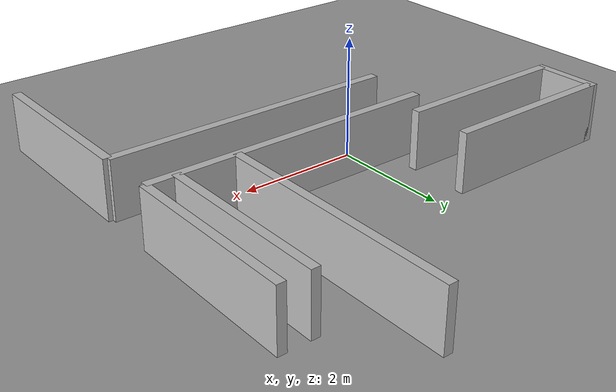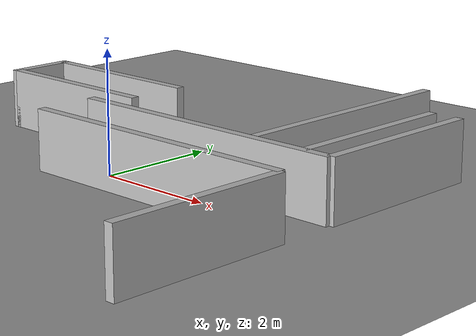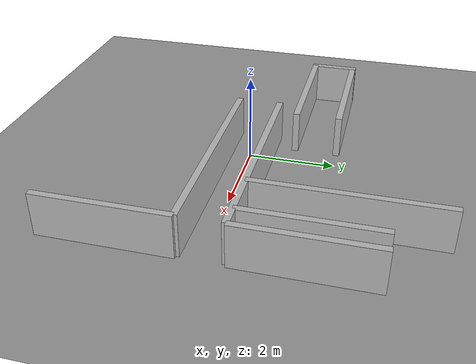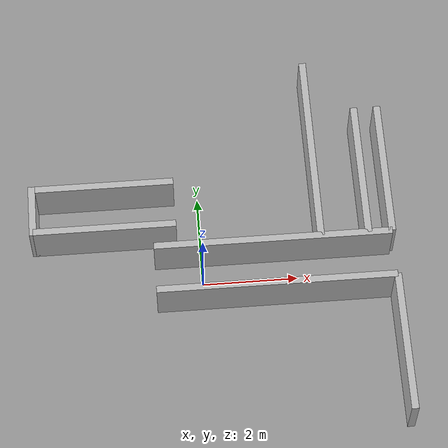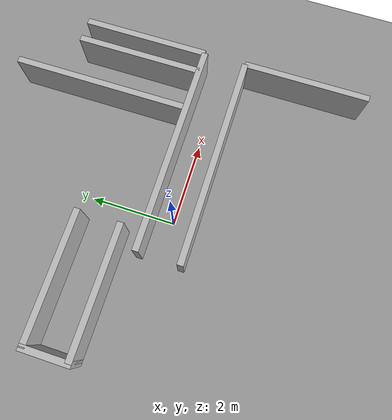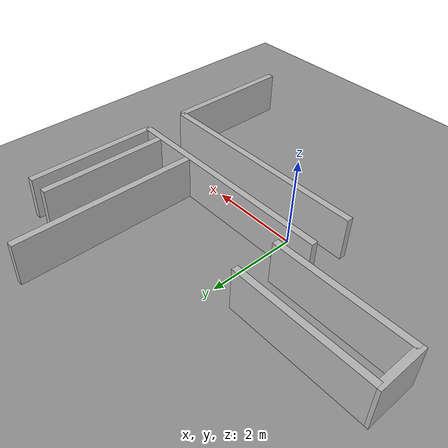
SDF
<?xml version="1.0"?>
<sdf version="1.9">
  <world name="navigation_narrow">
    <physics name="1ms" type="ignored">
      <max_step_size>0.001</max_step_size>
      <real_time_factor>1.0</real_time_factor>
    </physics>
    <plugin filename="gz-sim-physics-system" name="gz::sim::systems::Physics"/>
    <plugin filename="gz-sim-user-commands-system" name="gz::sim::systems::UserCommands"/>
    <plugin filename="gz-sim-scene-broadcaster-system" name="gz::sim::systems::SceneBroadcaster"/>
    <plugin filename="gz-sim-sensors-system" name="gz::sim::systems::Sensors">
      <render_engine>ogre2</render_engine>
    </plugin>
    <plugin filename="gz-sim-imu-system" name="gz::sim::systems::Imu"/>
    <light type="directional" name="sun">
      <pose>0 0 10 0 0 0</pose><cast_shadows>true</cast_shadows>
      <diffuse>0.85 0.85 0.85 1</diffuse><specular>0.2 0.2 0.2 1</specular>
      <direction>-0.5 0.1 -0.9</direction>
    </light>
    <model name="ground_plane">
      <static>true</static>
      <link name="link">
        <collision name="collision"><geometry><plane><normal>0 0 1</normal><size>20 20</size></plane></geometry></collision>
        <visual name="visual">
          <geometry><plane><normal>0 0 1</normal><size>20 20</size></plane></geometry>
          <material><ambient>0.58 0.58 0.58 1</ambient><diffuse>0.58 0.58 0.58 1</diffuse></material>
        </visual>
      </link>
    </model>

    <!-- 1.0 m clear corridor, wider than the complete ~0.17 m wheel envelope. -->
    <model name="corridor_north">
      <static>true</static><pose>1.5 0.5 0.5 0 0 0</pose>
      <link name="link"><collision name="collision"><geometry><box><size>5.0 0.15 1.0</size></box></geometry></collision>
        <visual name="visual"><geometry><box><size>5.0 0.15 1.0</size></box></geometry></visual></link>
    </model>
    <model name="corridor_south">
      <static>true</static><pose>1.5 -0.5 0.5 0 0 0</pose>
      <link name="link"><collision name="collision"><geometry><box><size>5.0 0.15 1.0</size></box></geometry></collision>
        <visual name="visual"><geometry><box><size>5.0 0.15 1.0</size></box></geometry></visual></link>
    </model>

    <!-- Doorway at x=4: two wall segments leave a 1.0 m opening. -->
    <model name="doorway_lower">
      <static>true</static><pose>4 -2.0 0.5 0 0 0</pose>
      <link name="link"><collision name="collision"><geometry><box><size>0.15 3.0 1.0</size></box></geometry></collision>
        <visual name="visual"><geometry><box><size>0.15 3.0 1.0</size></box></geometry></visual></link>
    </model>
    <model name="doorway_upper">
      <static>true</static><pose>4 2.0 0.5 0 0 0</pose>
      <link name="link"><collision name="collision"><geometry><box><size>0.15 3.0 1.0</size></box></geometry></collision>
        <visual name="visual"><geometry><box><size>0.15 3.0 1.0</size></box></geometry></visual></link>
    </model>

    <!-- L-shaped turn into the upper open area. -->
    <model name="l_turn_outer">
      <static>true</static><pose>2.5 2.6 0.5 0 0 0</pose>
      <link name="link"><collision name="collision"><geometry><box><size>0.15 4.2 1.0</size></box></geometry></collision>
        <visual name="visual"><geometry><box><size>0.15 4.2 1.0</size></box></geometry></visual></link>
    </model>
    <model name="l_turn_inner">
      <static>true</static><pose>3.5 2.0 0.5 0 0 0</pose>
      <link name="link"><collision name="collision"><geometry><box><size>0.15 3.0 1.0</size></box></geometry></collision>
        <visual name="visual"><geometry><box><size>0.15 3.0 1.0</size></box></geometry></visual></link>
    </model>

    <!-- A separate dead-end branch west of the spawn. -->
    <model name="dead_end_north">
      <static>true</static><pose>-2.0 2.0 0.5 0 0 0</pose>
      <link name="link"><collision name="collision"><geometry><box><size>3.0 0.15 1.0</size></box></geometry></collision>
        <visual name="visual"><geometry><box><size>3.0 0.15 1.0</size></box></geometry></visual></link>
    </model>
    <model name="dead_end_south">
      <static>true</static><pose>-2.0 1.0 0.5 0 0 0</pose>
      <link name="link"><collision name="collision"><geometry><box><size>3.0 0.15 1.0</size></box></geometry></collision>
        <visual name="visual"><geometry><box><size>3.0 0.15 1.0</size></box></geometry></visual></link>
    </model>
    <model name="dead_end_cap">
      <static>true</static><pose>-3.5 1.5 0.5 0 0 0</pose>
      <link name="link"><collision name="collision"><geometry><box><size>0.15 1.15 1.0</size></box></geometry></collision>
        <visual name="visual"><geometry><box><size>0.15 1.15 1.0</size></box></geometry></visual></link>
    </model>
  </world>
</sdf>
